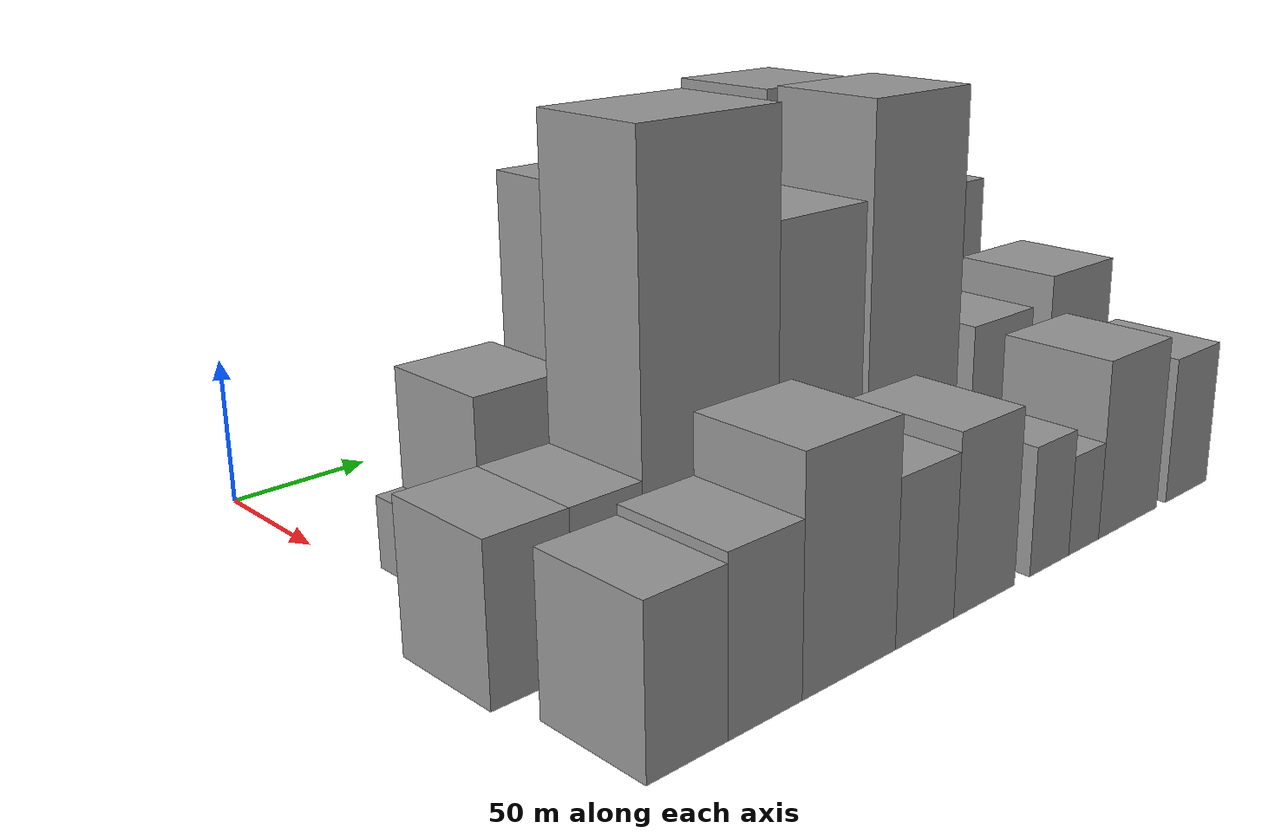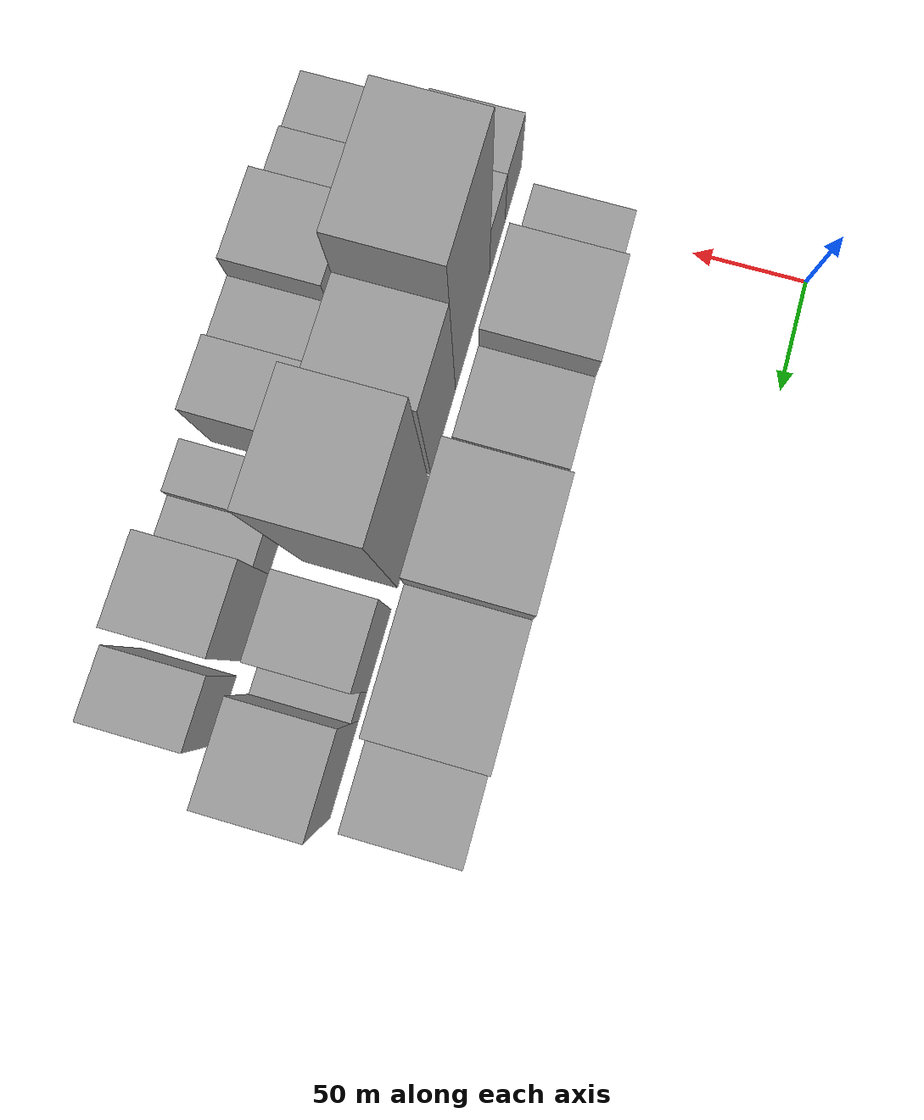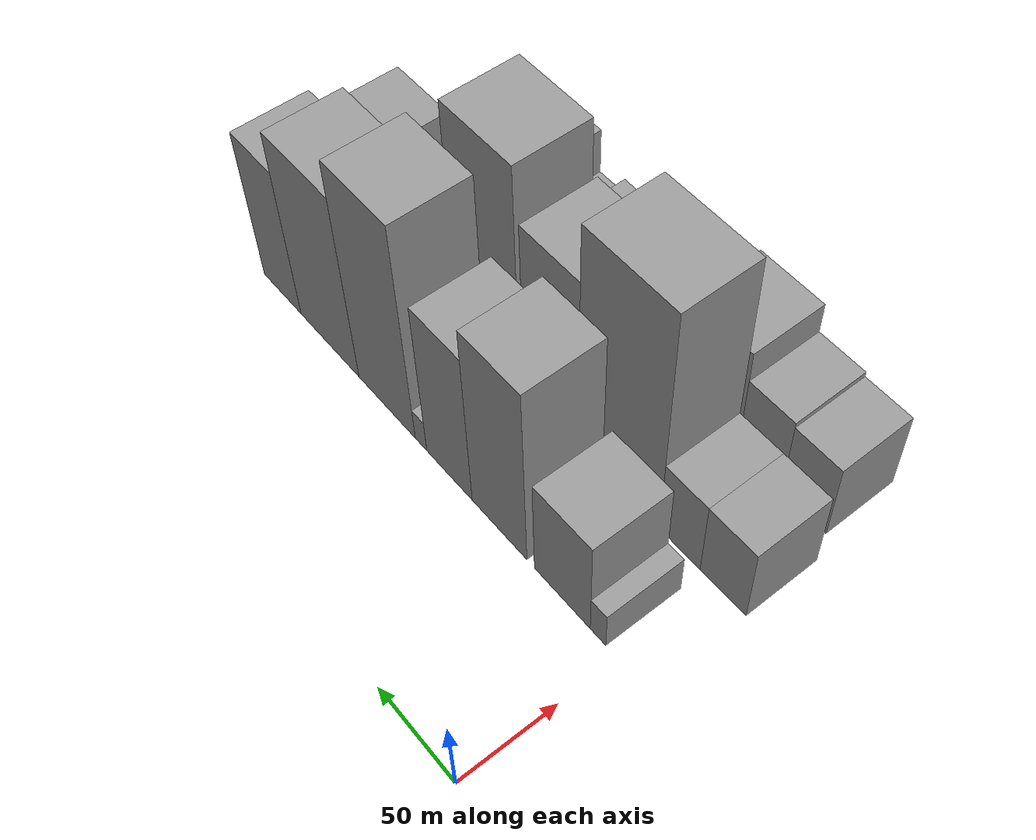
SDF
<sdf version="1.6">
 <world name="default">
  <model name="building_18">
   <static>1</static>
   <pose>100.0000 11.9810 0 0.000000 0.000000 0.000000</pose>
   <link name="link">
    <pose>0 0 12.00 0 0 0</pose>
    <collision name="collision"><geometry><box><size>40.0000 9.6409 24.0000</size></box></geometry></collision>
    <visual name="visual">
     <cast_shadows>0</cast_shadows>
     <geometry><box><size>40.0000 9.6409 24.0000</size></box></geometry>
     <material>
      <script>
       <uri>model://grey_wall/materials/scripts</uri>
       <uri>model://grey_wall/materials/textures</uri>
       <name>vrc/grey_wall</name>
      </script>
     </material>
    </visual>
   </link>
  </model>
  <model name="building_19">
   <static>1</static>
   <pose>100.0000 34.5538 0 0.000000 0.000000 0.000000</pose>
   <link name="link">
    <pose>0 0 31.50 0 0 0</pose>
    <collision name="collision"><geometry><box><size>40.0000 35.5048 63.0000</size></box></geometry></collision>
    <visual name="visual">
     <cast_shadows>0</cast_shadows>
     <geometry><box><size>40.0000 35.5048 63.0000</size></box></geometry>
     <material>
      <script>
       <uri>model://grey_wall/materials/scripts</uri>
       <uri>model://grey_wall/materials/textures</uri>
       <name>vrc/grey_wall</name>
      </script>
     </material>
    </visual>
   </link>
  </model>
  <model name="building_20">
   <static>1</static>
   <pose>100.0000 75.8452 0 0.000000 0.000000 0.000000</pose>
   <link name="link">
    <pose>0 0 58.50 0 0 0</pose>
    <collision name="collision"><geometry><box><size>40.0000 37.0780 117.0000</size></box></geometry></collision>
    <visual name="visual">
     <cast_shadows>0</cast_shadows>
     <geometry><box><size>40.0000 37.0780 117.0000</size></box></geometry>
     <material>
      <script>
       <uri>model://grey_wall/materials/scripts</uri>
       <uri>model://grey_wall/materials/textures</uri>
       <name>vrc/grey_wall</name>
      </script>
     </material>
    </visual>
   </link>
  </model>
  <model name="building_21">
   <static>1</static>
   <pose>100.0000 110.5183 0 0.000000 0.000000 0.000000</pose>
   <link name="link">
    <pose>0 0 49.50 0 0 0</pose>
    <collision name="collision"><geometry><box><size>40.0000 32.2683 99.0000</size></box></geometry></collision>
    <visual name="visual">
     <cast_shadows>0</cast_shadows>
     <geometry><box><size>40.0000 32.2683 99.0000</size></box></geometry>
     <material>
      <script>
       <uri>model://grey_wall/materials/scripts</uri>
       <uri>model://grey_wall/materials/textures</uri>
       <name>vrc/grey_wall</name>
      </script>
     </material>
    </visual>
   </link>
  </model>
  <model name="building_22">
   <static>1</static>
   <pose>100.0000 130.8560 0 0.000000 0.000000 0.000000</pose>
   <link name="link">
    <pose>0 0 10.50 0 0 0</pose>
    <collision name="collision"><geometry><box><size>40.0000 8.4071 21.0000</size></box></geometry></collision>
    <visual name="visual">
     <cast_shadows>0</cast_shadows>
     <geometry><box><size>40.0000 8.4071 21.0000</size></box></geometry>
     <material>
      <script>
       <uri>model://grey_wall/materials/scripts</uri>
       <uri>model://grey_wall/materials/textures</uri>
       <name>vrc/grey_wall</name>
      </script>
     </material>
    </visual>
   </link>
  </model>
  <model name="building_23">
   <static>1</static>
   <pose>100.0000 156.3735 0 0.000000 0.000000 0.000000</pose>
   <link name="link">
    <pose>0 0 69.00 0 0 0</pose>
    <collision name="collision"><geometry><box><size>40.0000 42.6278 138.0000</size></box></geometry></collision>
    <visual name="visual">
     <cast_shadows>0</cast_shadows>
     <geometry><box><size>40.0000 42.6278 138.0000</size></box></geometry>
     <material>
      <script>
       <uri>model://grey_wall/materials/scripts</uri>
       <uri>model://grey_wall/materials/textures</uri>
       <name>vrc/grey_wall</name>
      </script>
     </material>
    </visual>
   </link>
  </model>
  <model name="building_24">
   <static>1</static>
   <pose>100.0000 201.0394 0 0.000000 0.000000 0.000000</pose>
   <link name="link">
    <pose>0 0 58.50 0 0 0</pose>
    <collision name="collision"><geometry><box><size>40.0000 46.7040 117.0000</size></box></geometry></collision>
    <visual name="visual">
     <cast_shadows>0</cast_shadows>
     <geometry><box><size>40.0000 46.7040 117.0000</size></box></geometry>
     <material>
      <script>
       <uri>model://grey_wall/materials/scripts</uri>
       <uri>model://grey_wall/materials/textures</uri>
       <name>vrc/grey_wall</name>
      </script>
     </material>
    </visual>
   </link>
  </model>
  <model name="building_25">
   <static>1</static>
   <pose>100.0000 239.8591 0 0.000000 0.000000 0.000000</pose>
   <link name="link">
    <pose>0 0 46.50 0 0 0</pose>
    <collision name="collision"><geometry><box><size>40.0000 30.9353 93.0000</size></box></geometry></collision>
    <visual name="visual">
     <cast_shadows>0</cast_shadows>
     <geometry><box><size>40.0000 30.9353 93.0000</size></box></geometry>
     <material>
      <script>
       <uri>model://grey_wall/materials/scripts</uri>
       <uri>model://grey_wall/materials/textures</uri>
       <name>vrc/grey_wall</name>
      </script>
     </material>
    </visual>
   </link>
  </model>
  <model name="building_53">
   <static>1</static>
   <pose>152.0000 -4.9689 0 0.000000 0.000000 0.000000</pose>
   <link name="link">
    <pose>0 0 24.00 0 0 0</pose>
    <collision name="collision"><geometry><box><size>40.0000 27.3143 48.0000</size></box></geometry></collision>
    <visual name="visual">
     <cast_shadows>0</cast_shadows>
     <geometry><box><size>40.0000 27.3143 48.0000</size></box></geometry>
     <material>
      <script>
       <uri>model://grey_wall/materials/scripts</uri>
       <uri>model://grey_wall/materials/textures</uri>
       <name>vrc/grey_wall</name>
      </script>
     </material>
    </visual>
   </link>
  </model>
  <model name="building_54">
   <static>1</static>
   <pose>152.0000 21.2278 0 0.000000 0.000000 0.000000</pose>
   <link name="link">
    <pose>0 0 24.00 0 0 0</pose>
    <collision name="collision"><geometry><box><size>40.0000 25.0791 48.0000</size></box></geometry></collision>
    <visual name="visual">
     <cast_shadows>0</cast_shadows>
     <geometry><box><size>40.0000 25.0791 48.0000</size></box></geometry>
     <material>
      <script>
       <uri>model://grey_wall/materials/scripts</uri>
       <uri>model://grey_wall/materials/textures</uri>
       <name>vrc/grey_wall</name>
      </script>
     </material>
    </visual>
   </link>
  </model>
  <model name="building_55">
   <static>1</static>
   <pose>152.0000 60.3407 0 0.000000 0.000000 0.000000</pose>
   <link name="link">
    <pose>0 0 72.00 0 0 0</pose>
    <collision name="collision"><geometry><box><size>40.0000 53.1468 144.0000</size></box></geometry></collision>
    <visual name="visual">
     <cast_shadows>0</cast_shadows>
     <geometry><box><size>40.0000 53.1468 144.0000</size></box></geometry>
     <material>
      <script>
       <uri>model://grey_wall/materials/scripts</uri>
       <uri>model://grey_wall/materials/textures</uri>
       <name>vrc/grey_wall</name>
      </script>
     </material>
    </visual>
   </link>
  </model>
  <model name="building_56">
   <static>1</static>
   <pose>152.0000 105.6011 0 0.000000 0.000000 0.000000</pose>
   <link name="link">
    <pose>0 0 55.50 0 0 0</pose>
    <collision name="collision"><geometry><box><size>40.0000 37.3741 111.0000</size></box></geometry></collision>
    <visual name="visual">
     <cast_shadows>0</cast_shadows>
     <geometry><box><size>40.0000 37.3741 111.0000</size></box></geometry>
     <material>
      <script>
       <uri>model://grey_wall/materials/scripts</uri>
       <uri>model://grey_wall/materials/textures</uri>
       <name>vrc/grey_wall</name>
      </script>
     </material>
    </visual>
   </link>
  </model>
  <model name="building_57">
   <static>1</static>
   <pose>152.0000 150.0815 0 0.000000 0.000000 0.000000</pose>
   <link name="link">
    <pose>0 0 70.50 0 0 0</pose>
    <collision name="collision"><geometry><box><size>40.0000 45.5866 141.0000</size></box></geometry></collision>
    <visual name="visual">
     <cast_shadows>0</cast_shadows>
     <geometry><box><size>40.0000 45.5866 141.0000</size></box></geometry>
     <material>
      <script>
       <uri>model://grey_wall/materials/scripts</uri>
       <uri>model://grey_wall/materials/textures</uri>
       <name>vrc/grey_wall</name>
      </script>
     </material>
    </visual>
   </link>
  </model>
  <model name="building_58">
   <static>1</static>
   <pose>152.0000 198.7136 0 0.000000 0.000000 0.000000</pose>
   <link name="link">
    <pose>0 0 30.00 0 0 0</pose>
    <collision name="collision"><geometry><box><size>40.0000 33.6777 60.0000</size></box></geometry></collision>
    <visual name="visual">
     <cast_shadows>0</cast_shadows>
     <geometry><box><size>40.0000 33.6777 60.0000</size></box></geometry>
     <material>
      <script>
       <uri>model://grey_wall/materials/scripts</uri>
       <uri>model://grey_wall/materials/textures</uri>
       <name>vrc/grey_wall</name>
      </script>
     </material>
    </visual>
   </link>
  </model>
  <model name="building_59">
   <static>1</static>
   <pose>152.0000 221.4203 0 0.000000 0.000000 0.000000</pose>
   <link name="link">
    <pose>0 0 13.50 0 0 0</pose>
    <collision name="collision"><geometry><box><size>40.0000 11.7356 27.0000</size></box></geometry></collision>
    <visual name="visual">
     <cast_shadows>0</cast_shadows>
     <geometry><box><size>40.0000 11.7356 27.0000</size></box></geometry>
     <material>
      <script>
       <uri>model://grey_wall/materials/scripts</uri>
       <uri>model://grey_wall/materials/textures</uri>
       <name>vrc/grey_wall</name>
      </script>
     </material>
    </visual>
   </link>
  </model>
  <model name="building_60">
   <static>1</static>
   <pose>152.0000 246.4026 0 0.000000 0.000000 0.000000</pose>
   <link name="link">
    <pose>0 0 34.50 0 0 0</pose>
    <collision name="collision"><geometry><box><size>40.0000 38.2290 69.0000</size></box></geometry></collision>
    <visual name="visual">
     <cast_shadows>0</cast_shadows>
     <geometry><box><size>40.0000 38.2290 69.0000</size></box></geometry>
     <material>
      <script>
       <uri>model://grey_wall/materials/scripts</uri>
       <uri>model://grey_wall/materials/textures</uri>
       <name>vrc/grey_wall</name>
      </script>
     </material>
    </visual>
   </link>
  </model>
  <model name="building_85">
   <static>1</static>
   <pose>204.0000 1.1885 0 0.000000 0.000000 0.000000</pose>
   <link name="link">
    <pose>0 0 24.00 0 0 0</pose>
    <collision name="collision"><geometry><box><size>40.0000 26.7398 48.0000</size></box></geometry></collision>
    <visual name="visual">
     <cast_shadows>0</cast_shadows>
     <geometry><box><size>40.0000 26.7398 48.0000</size></box></geometry>
     <material>
      <script>
       <uri>model://grey_wall/materials/scripts</uri>
       <uri>model://grey_wall/materials/textures</uri>
       <name>vrc/grey_wall</name>
      </script>
     </material>
    </visual>
   </link>
  </model>
  <model name="building_86">
   <static>1</static>
   <pose>204.0000 28.0335 0 0.000000 0.000000 0.000000</pose>
   <link name="link">
    <pose>0 0 25.50 0 0 0</pose>
    <collision name="collision"><geometry><box><size>40.0000 26.9501 51.0000</size></box></geometry></collision>
    <visual name="visual">
     <cast_shadows>0</cast_shadows>
     <geometry><box><size>40.0000 26.9501 51.0000</size></box></geometry>
     <material>
      <script>
       <uri>model://grey_wall/materials/scripts</uri>
       <uri>model://grey_wall/materials/textures</uri>
       <name>vrc/grey_wall</name>
      </script>
     </material>
    </visual>
   </link>
  </model>
  <model name="building_87">
   <static>1</static>
   <pose>204.0000 60.3993 0 0.000000 0.000000 0.000000</pose>
   <link name="link">
    <pose>0 0 34.50 0 0 0</pose>
    <collision name="collision"><geometry><box><size>40.0000 37.7816 69.0000</size></box></geometry></collision>
    <visual name="visual">
     <cast_shadows>0</cast_shadows>
     <geometry><box><size>40.0000 37.7816 69.0000</size></box></geometry>
     <material>
      <script>
       <uri>model://grey_wall/materials/scripts</uri>
       <uri>model://grey_wall/materials/textures</uri>
       <name>vrc/grey_wall</name>
      </script>
     </material>
    </visual>
   </link>
  </model>
  <model name="building_88">
   <static>1</static>
   <pose>204.0000 92.4048 0 0.000000 0.000000 0.000000</pose>
   <link name="link">
    <pose>0 0 25.50 0 0 0</pose>
    <collision name="collision"><geometry><box><size>40.0000 26.2293 51.0000</size></box></geometry></collision>
    <visual name="visual">
     <cast_shadows>0</cast_shadows>
     <geometry><box><size>40.0000 26.2293 51.0000</size></box></geometry>
     <material>
      <script>
       <uri>model://grey_wall/materials/scripts</uri>
       <uri>model://grey_wall/materials/textures</uri>
       <name>vrc/grey_wall</name>
      </script>
     </material>
    </visual>
   </link>
  </model>
  <model name="building_89">
   <static>1</static>
   <pose>204.0000 120.4891 0 0.000000 0.000000 0.000000</pose>
   <link name="link">
    <pose>0 0 28.50 0 0 0</pose>
    <collision name="collision"><geometry><box><size>40.0000 29.9392 57.0000</size></box></geometry></collision>
    <visual name="visual">
     <cast_shadows>0</cast_shadows>
     <geometry><box><size>40.0000 29.9392 57.0000</size></box></geometry>
     <material>
      <script>
       <uri>model://grey_wall/materials/scripts</uri>
       <uri>model://grey_wall/materials/textures</uri>
       <name>vrc/grey_wall</name>
      </script>
     </material>
    </visual>
   </link>
  </model>
  <model name="building_90">
   <static>1</static>
   <pose>204.0000 154.0068 0 0.000000 0.000000 0.000000</pose>
   <link name="link">
    <pose>0 0 21.00 0 0 0</pose>
    <collision name="collision"><geometry><box><size>40.0000 21.0963 42.0000</size></box></geometry></collision>
    <visual name="visual">
     <cast_shadows>0</cast_shadows>
     <geometry><box><size>40.0000 21.0963 42.0000</size></box></geometry>
     <material>
      <script>
       <uri>model://grey_wall/materials/scripts</uri>
       <uri>model://grey_wall/materials/textures</uri>
       <name>vrc/grey_wall</name>
      </script>
     </material>
    </visual>
   </link>
  </model>
  <model name="building_91">
   <static>1</static>
   <pose>204.0000 173.1728 0 0.000000 0.000000 0.000000</pose>
   <link name="link">
    <pose>0 0 16.50 0 0 0</pose>
    <collision name="collision"><geometry><box><size>40.0000 17.2356 33.0000</size></box></geometry></collision>
    <visual name="visual">
     <cast_shadows>0</cast_shadows>
     <geometry><box><size>40.0000 17.2356 33.0000</size></box></geometry>
     <material>
      <script>
       <uri>model://grey_wall/materials/scripts</uri>
       <uri>model://grey_wall/materials/textures</uri>
       <name>vrc/grey_wall</name>
      </script>
     </material>
    </visual>
   </link>
  </model>
  <model name="building_92">
   <static>1</static>
   <pose>204.0000 199.7344 0 0.000000 0.000000 0.000000</pose>
   <link name="link">
    <pose>0 0 30.00 0 0 0</pose>
    <collision name="collision"><geometry><box><size>40.0000 35.8876 60.0000</size></box></geometry></collision>
    <visual name="visual">
     <cast_shadows>0</cast_shadows>
     <geometry><box><size>40.0000 35.8876 60.0000</size></box></geometry>
     <material>
      <script>
       <uri>model://grey_wall/materials/scripts</uri>
       <uri>model://grey_wall/materials/textures</uri>
       <name>vrc/grey_wall</name>
      </script>
     </material>
    </visual>
   </link>
  </model>
  <model name="building_93">
   <static>1</static>
   <pose>204.0000 237.5069 0 0.000000 0.000000 0.000000</pose>
   <link name="link">
    <pose>0 0 25.50 0 0 0</pose>
    <collision name="collision"><geometry><box><size>40.0000 27.6574 51.0000</size></box></geometry></collision>
    <visual name="visual">
     <cast_shadows>0</cast_shadows>
     <geometry><box><size>40.0000 27.6574 51.0000</size></box></geometry>
     <material>
      <script>
       <uri>model://grey_wall/materials/scripts</uri>
       <uri>model://grey_wall/materials/textures</uri>
       <name>vrc/grey_wall</name>
      </script>
     </material>
    </visual>
   </link>
  </model>
 </world>
</sdf>
